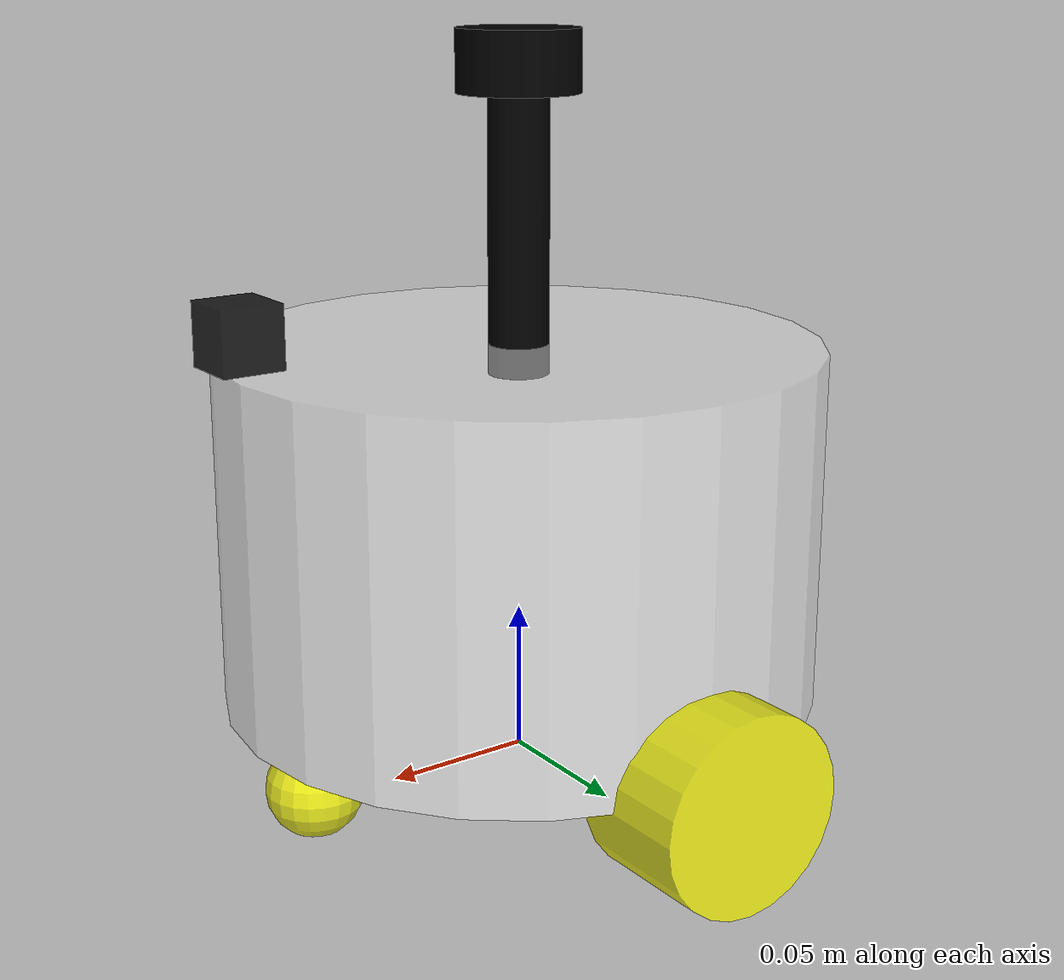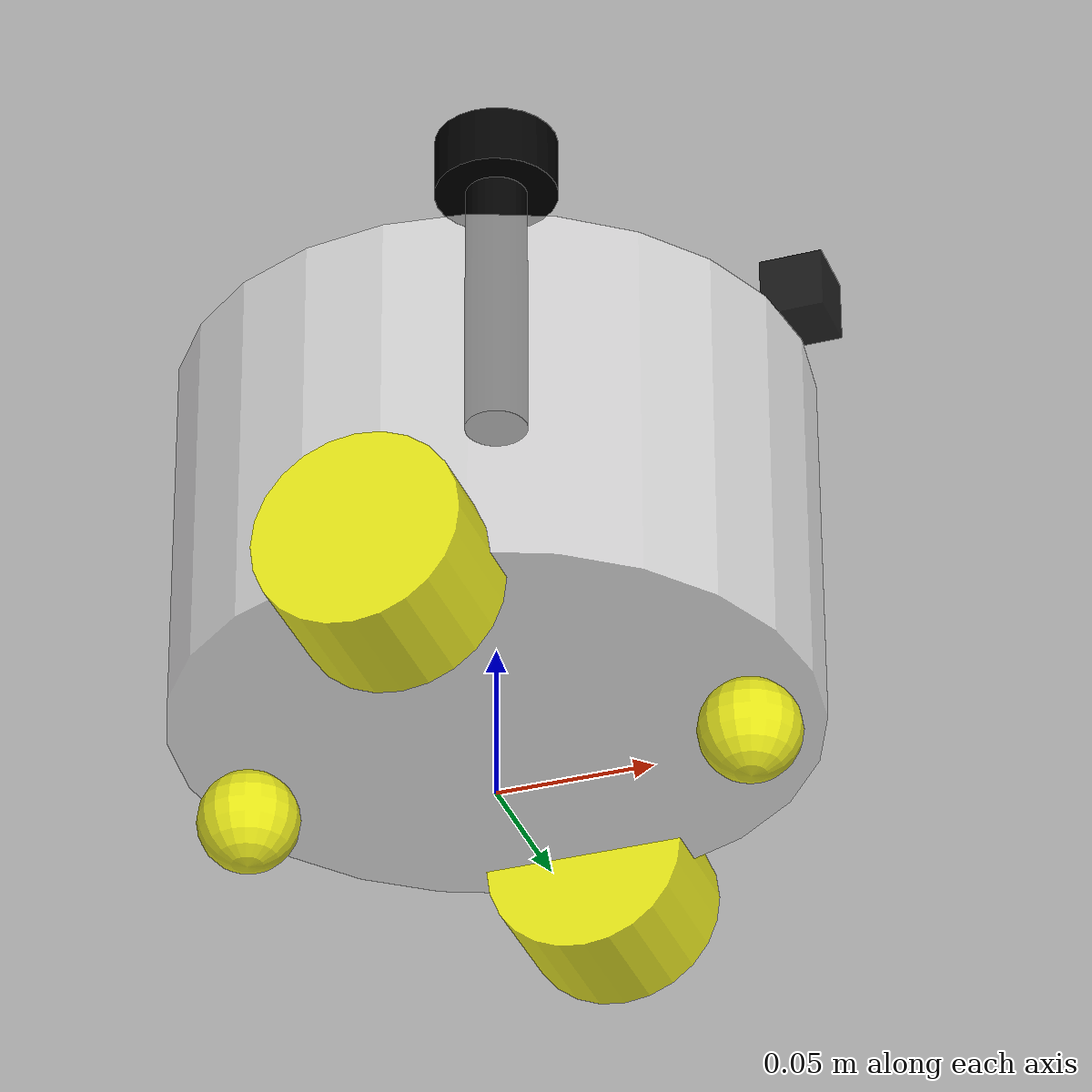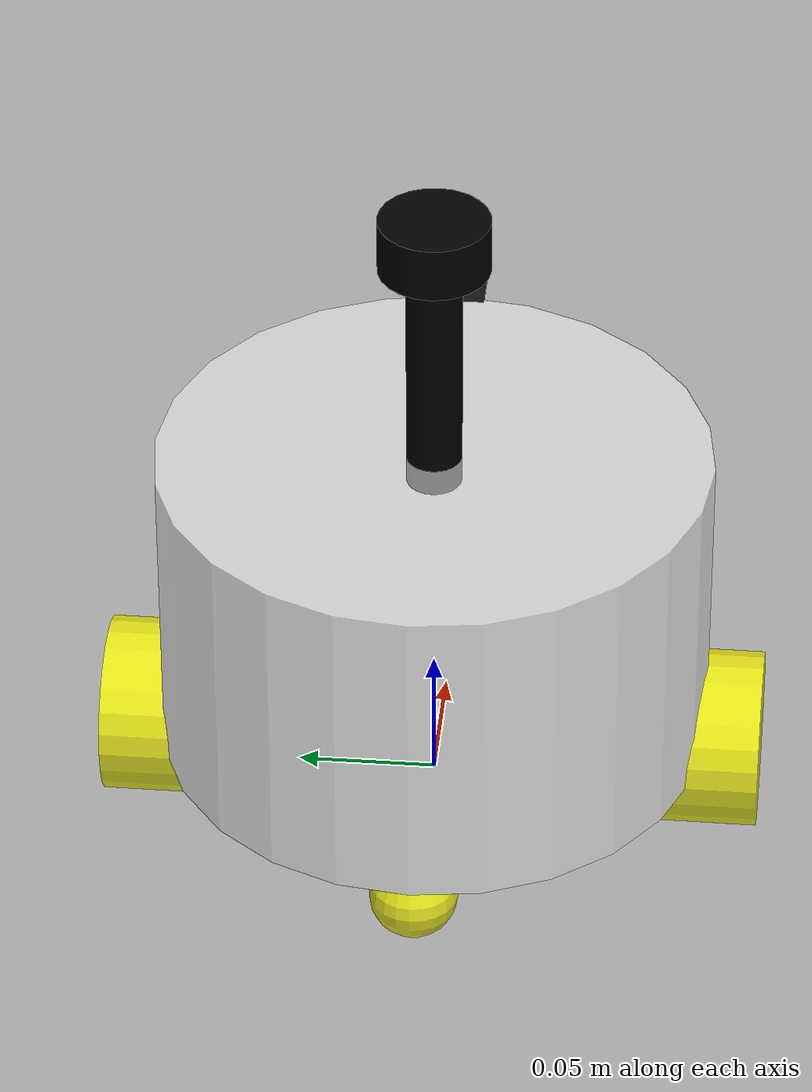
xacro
<?xml version="1.0"?>
<!-- Fishbot 机器人的主 XACRO 文件，包含底座、传感器和执行器。 -->
<robot xmlns:xacro="http://www.ros.org/wiki/xacro" name="fishbot">

    <xacro:include filename="$(find fishbot_description)/urdf/fishbot/base.urdf.xacro" />

    <xacro:include filename="$(find fishbot_description)/urdf/fishbot/sensor/camera.urdf.xacro" />
    <xacro:include filename="$(find fishbot_description)/urdf/fishbot/sensor/imu.urdf.xacro" />
    <xacro:include filename="$(find fishbot_description)/urdf/fishbot/sensor/laser.urdf.xacro" />

    <xacro:include filename="$(find fishbot_description)/urdf/fishbot/actuator/wheel.urdf.xacro" />
    <xacro:include filename="$(find fishbot_description)/urdf/fishbot/actuator/caster.urdf.xacro" />

    <xacro:include
        filename="$(find fishbot_description)/urdf/fishbot/plugins/gazebo_sensor_plugin.xacro" />

    <xacro:include
        filename="$(find fishbot_description)/urdf/fishbot/fishbot.ros2_control.xacro" />

    <xacro:base_xacro length="0.12" radius="0.10" />

    <xacro:imu_xacro xyz="0.0 0.0 0.02" />
    <xacro:camera_xacro xyz="0.10 0.0 0.075" />
    <xacro:laser_xacro xyz="0.0 0.0 0.10" />

    <xacro:wheel_xacro wheel_name="left_wheel" xyz="0.0 0.10 -0.06 " />
    <xacro:wheel_xacro wheel_name="right_wheel" xyz="0.0 -0.10 -0.06 " />
    <xacro:caster_xacro caster_name="front_caster" xyz="0.08 0.0 -0.076 " />
    <xacro:caster_xacro caster_name="back_caster" xyz="-0.08 0.0 -0.076 " />

    <xacro:gazebo_sensor_plugin />
    <xacro:fishbot_ros2_control />

</robot>

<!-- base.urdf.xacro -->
<!-- 定义 Fishbot 机器人基座的 XACRO 文件。 -->
<robot xmlns:xacro="http://www.ros.org/wiki/xacro">
    <xacro:include filename="$(find fishbot_description)/urdf/fishbot/common_inertia.xacro" />

    <xacro:macro name="base_xacro" params="length radius">
        <link name="base_footprint" />

        <link name="base_link">
            <visual>
                <origin xyz="0.0 0.0 0.0" rpy="0.0 0.0 0.0" />
                <geometry>
                    <cylinder radius="${radius}" length="${length}" />
                </geometry>
                <material name="white">
                    <color rgba="1.0 1.0 1.0 0.5" />
                </material>
            </visual>

            <collision>
                <origin xyz="0.0 0.0 0.0" rpy="0.0 0.0 0.0" />
                <geometry>
                    <cylinder radius="${radius}" length="${length}" />
                </geometry>
                <material name="white">
                    <color rgba="1.0 1.0 1.0 0.5" />
                </material>
            </collision>

            <xacro:cylinder_inertia m="1.0" r="${radius}" h="${length}" />
        </link>

        <joint name="joint_name" type="fixed">
            <origin xyz="0.0 0.0 ${length/2.0+0.032-0.01}" rpy="0.0 0.0 0.0" />
            <parent link="base_footprint" />
            <child link="base_link" />
        </joint>
    </xacro:macro>

</robot>

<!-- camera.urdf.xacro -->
<!-- 定义 Fishbot 机器人摄像头传感器的 XACRO 文件。 -->
<robot xmlns:xacro="http://www.ros.org/wiki/xacro">
    <xacro:include filename="$(find fishbot_description)/urdf/fishbot/common_inertia.xacro" />

    <xacro:macro name="camera_xacro" params="xyz">
        <link name="camera_link">
            <visual>
                <origin xyz="0.0 0.0 0.0" rpy="0.0 0.0 0.0" />
                <geometry>
                    <box size="0.02 0.02 0.02" />
                </geometry>
                <material name="black">
                    <color rgba="0.0 0.0 0.0 0.8" />
                </material>
            </visual>
            <collision>
                <origin xyz="0.0 0.0 0.0" rpy="0.0 0.0 0.0" />
                <geometry>
                    <box size="0.02 0.02 0.02" />
                </geometry>
                <material name="black">
                    <color rgba="0.0 0.0 0.0 0.8" />
                </material>
            </collision>

            <xacro:box_inertia m="0.10" w="0.02" h="0.10" d="0.02" />
        </link>

        <link name="camera_optical_link">

        </link>

        <joint name="camera_joint" type="fixed">
            <parent link="base_link" />
            <child link="camera_link" />
            <origin xyz="${xyz}" rpy="0.0 0.0 0.0" />
        </joint>

        <joint name="camera_optical_joint" type="fixed">
            <parent link="camera_link" />
            <child link="camera_optical_link" />
            <origin xyz="0 0 0" rpy="${-pi/2} 0.0 ${-pi/2}" />
        </joint>

    </xacro:macro>

</robot>

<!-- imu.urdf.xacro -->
<!-- 定义 Fishbot 机器人 IMU 传感器的 XACRO 文件。 -->
<robot xmlns:xacro="http://www.ros.org/wiki/xacro">
    <xacro:include filename="$(find fishbot_description)/urdf/fishbot/common_inertia.xacro" />

    <xacro:macro name="imu_xacro" params="xyz">
        <link name="imu_link">
            <visual>
                <origin xyz="0.0 0.0 0.0" rpy="0.0 0.0 0.0" />
                <geometry>
                    <box size="0.02 0.02 0.02" />
                </geometry>
                <material name="black">
                    <color rgba="0.0 0.0 0.0 0.8" />
                </material>
            </visual>

            <collision>
                <origin xyz="0.0 0.0 0.0" rpy="0.0 0.0 0.0" />
                <geometry>
                    <box size="0.02 0.02 0.02" />
                </geometry>
                <material name="black">
                    <color rgba="0.0 0.0 0.0 0.8" />
                </material>
            </collision>

            <xacro:box_inertia m="0.05" w="0.02" h="0.02" d="0.02" />
        </link>

        <joint name="imu_joint" type="fixed">
            <parent link="base_link" />
            <child link="imu_link" />
            <origin xyz="${xyz}" rpy="0.0 0.0 0.0" />
        </joint>
    </xacro:macro>

</robot>

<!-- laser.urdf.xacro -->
<!-- 定义 Fishbot 机器人激光传感器的 XACRO 文件。 -->
<robot xmlns:xacro="http://www.ros.org/wiki/xacro">
    <xacro:include filename="$(find fishbot_description)/urdf/fishbot/common_inertia.xacro" />

    <xacro:macro name="laser_xacro" params="xyz">
        <link name="laser_cylinder_link">
            <visual>
                <origin xyz="0.0 0.0 0.0" rpy="0.0 0.0 0.0" />
                <geometry>
                    <cylinder radius="0.01" length="0.10" />
                </geometry>
                <material name="black">
                    <color rgba="0.0 0.0 0.0 1.0" />
                </material>
            </visual>

            <xacro:cylinder_inertia m="0.05" r="0.01" h="0.10" />
        </link>

        <link name="laser_link">
            <visual>
                <origin xyz="0.0 0.0 0.0" rpy="0.0 0.0 0.0" />
                <geometry>
                    <cylinder radius="0.02" length="0.02" />
                </geometry>
                <material name="black">
                    <color rgba="0.0 0.0 0.0 1.0" />
                </material>
            </visual>

            <collision>
                <origin xyz="0.0 0.0 0.0" rpy="0.0 0.0 0.0" />
                <geometry>
                    <cylinder radius="0.02" length="0.02" />
                </geometry>
                <material name="black">
                    <color rgba="0.0 0.0 0.0 1.0" />
                </material>
            </collision>

            <xacro:cylinder_inertia m="0.10" r="0.02" h="0.02" />
        </link>

        <joint name="laser_joint" type="fixed">
            <parent link="laser_cylinder_link" />
            <child link="laser_link" />
            <origin xyz="0.0 0.0 0.05" rpy="0.0 0.0 0.0" />
        </joint>

        <joint name="laser_cylinder_joint" type="fixed">
            <parent link="base_link" />
            <child link="laser_cylinder_link" />
            <origin xyz="${xyz}" rpy="0.0 0.0 0.0" />
        </joint>

        <gazebo reference='laser_cylinder_link'>
            <material>Gazebo/Black</material>
        </gazebo>
        <gazebo reference='laser_link'>
            <material>Gazebo/Black</material>
        </gazebo>
    </xacro:macro>

</robot>

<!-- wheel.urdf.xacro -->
<!-- 定义 Fishbot 机器人车轮执行器的 XACRO 文件。 -->
<robot xmlns:xacro="http://www.ros.org/wiki/xacro">
    <xacro:include filename="$(find fishbot_description)/urdf/fishbot/common_inertia.xacro" />

    <xacro:macro name="wheel_xacro" params="wheel_name xyz">
        <link name="${wheel_name}_link">
            <visual>
                <origin xyz="0.0 0.0 0.0" rpy="1.57079 0.0 0.0" />
                <geometry>
                    <cylinder radius="0.032" length="0.04" />
                </geometry>
                <material name="yellow">
                    <color rgba="1.0 1.0 0.0 0.8" />
                </material>
            </visual>

            <collision>
                <origin xyz="0.0 0.0 0.0" rpy="1.57079 0.0 0.0" />
                <geometry>
                    <cylinder radius="0.032" length="0.04" />
                </geometry>
                <material name="yellow">
                    <color rgba="1.0 1.0 0.0 0.8" />
                </material>
            </collision>

            <xacro:cylinder_inertia m="0.05" r="0.032" h="0.04" />
        </link>

        <joint name="${wheel_name}_joint" type="continuous">
            <parent link="base_link" />
            <child link="${wheel_name}_link" />
            <origin xyz="${xyz}" rpy="0.0 0.0 0.0" />
            <axis xyz="0.0 1.0 0.0" />
        </joint>

        <gazebo reference="${wheel_name}_link">
            <mu1 value="20.0" />
            <mu2 value="20.0" />
            <kp value="100000000.0" />
            <kd value="1.0" />
        </gazebo>
    </xacro:macro>

</robot>

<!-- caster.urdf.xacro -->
<!-- 定义 Fishbot 机器人万向轮执行器的 XACRO 文件。 -->
<robot xmlns:xacro="http://www.ros.org/wiki/xacro">
    <xacro:include filename="$(find fishbot_description)/urdf/fishbot/common_inertia.xacro" />

    <xacro:macro name="caster_xacro" params="caster_name xyz">
        <link name="${caster_name}_link">
            <visual>
                <origin xyz="0.0 0.0 0.0" rpy="0.0 0.0 0.0" />
                <geometry>
                    <sphere radius="0.016" />
                </geometry>
                <material name="yellow">
                    <color rgba="1.0 1.0 0.0 0.8" />
                </material>
            </visual>

            <collision>
                <origin xyz="0.0 0.0 0.0" rpy="0.0 0.0 0.0" />
                <geometry>
                    <sphere radius="0.016" />
                </geometry>
                <material name="yellow">
                    <color rgba="1.0 1.0 0.0 0.8" />
                </material>
            </collision>

            <xacro:sphere_inertia m="1.0" r="0.016" />
        </link>

        <joint name="${caster_name}_joint" type="fixed">
            <parent link="base_link" />
            <child link="${caster_name}_link" />
            <origin xyz="${xyz}" rpy="0.0 0.0 0.0" />
            <axis xyz="0.0 1.0 0.0" />
        </joint>

        <gazebo reference="${caster_name}_link">
            <mu1 value="0.0" />
            <mu2 value="0.0" />
            <kp value="100000000.0" />
            <kd value="1.0" />
        </gazebo>
    </xacro:macro>

</robot>
